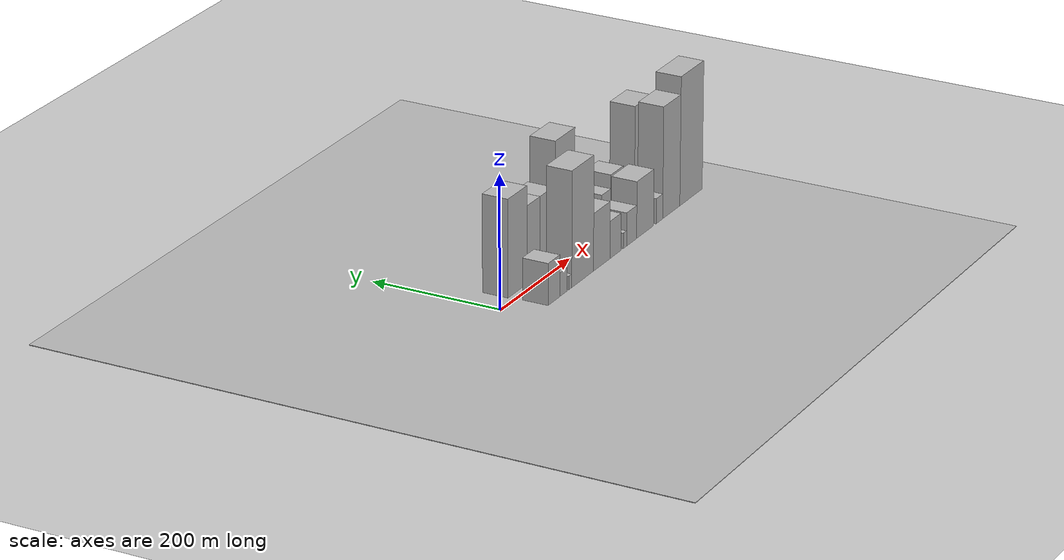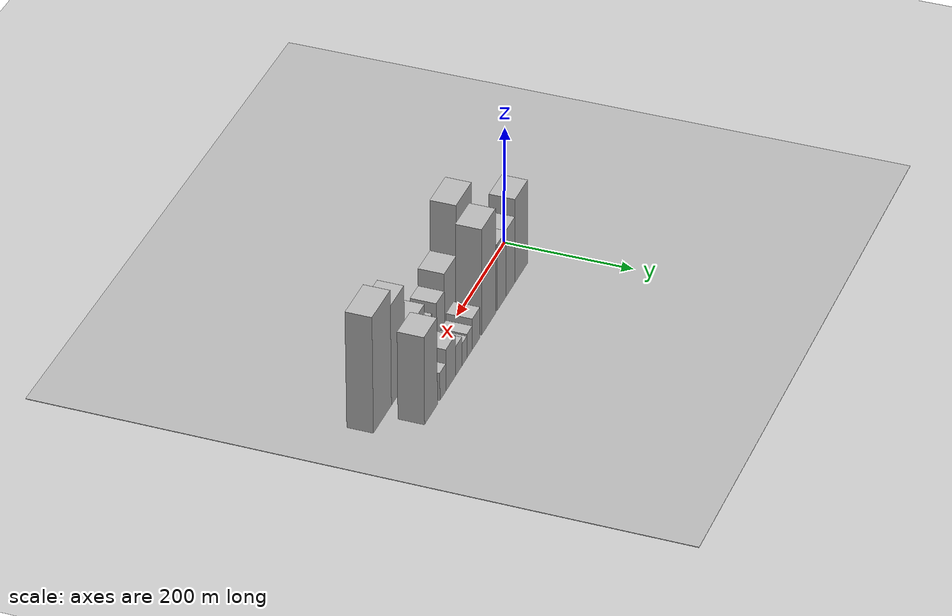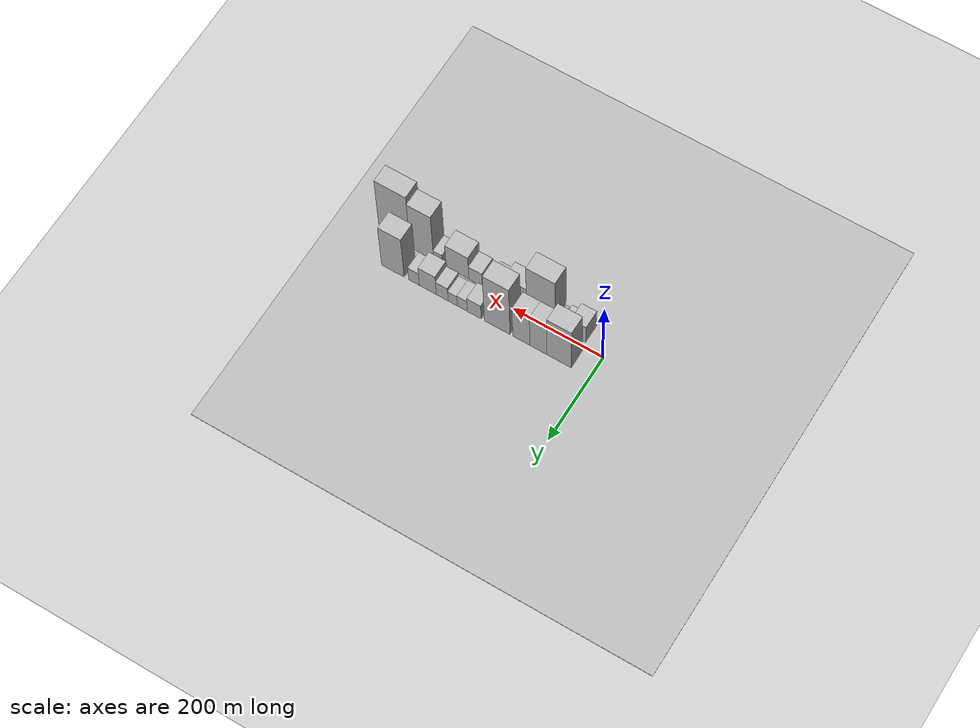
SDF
<?xml version="1.0" encoding="utf-8"?>

<sdf version="1.6">

   <world name="default">

      <gui fullscreen="0">

         <camera name="user_camera">

            <pose>-15 0 4.57585 0 0 0</pose>

            <view_controller>orbit</view_controller>

         </camera>

      </gui>

      <scene>

         <sky>

           <clouds>

             <speed>12</speed>

           </clouds>

         </sky>

         <ambient>0.4 0.4 0.4 1</ambient>

         <background>0.7 0.7 0.7 1</background>

         <shadows>1</shadows>

      </scene>

      <gravity>0 0 -9.8066</gravity>

      <magnetic_field>6e-06 2.3e-05 -4.2e-05</magnetic_field>

      <physics default="0" name="default_physics" type="ode">

         <ode>

            <solver>

               <type>quick</type>

               <iters>10</iters>

               <sor>1.0</sor>

               <use_dynamic_moi_rescaling>0</use_dynamic_moi_rescaling>

            </solver>

            <constraints>

               <cfm>0</cfm>

               <erp>0.2</erp>

               <contact_max_correcting_vel>100</contact_max_correcting_vel>

               <contact_surface_layer>0.001</contact_surface_layer>

            </constraints>

         </ode>

         <max_step_size>0.004</max_step_size>

         <real_time_factor>1</real_time_factor>

         <real_time_update_rate>250</real_time_update_rate>

      </physics>

      <light name="sun" type="directional">

         <cast_shadows>1</cast_shadows>

         <pose>0 0 10 0 0 0</pose>

         <diffuse>0.8 0.8 0.8 1</diffuse>

         <specular>0.2 0.2 0.2 1</specular>

         <attenuation>

            <range>1000</range>

            <constant>0.9</constant>

            <linear>0.01</linear>

            <quadratic>0.001</quadratic>

         </attenuation>

         <direction>-0.5 0.1 -0.9</direction>

      </light>

      <include>

         <name>ground_plane_1</name>

         <uri>model://HANNAS_ground_plane</uri>

         <pose>0 0 0  0 0 0</pose>

      </include>

      <include>

         <name>ground_plane_2</name>

         <uri>model://HANNAS_ground_plane</uri>

         <pose>100 0 0  0 0 0</pose>

      </include>

      <model name="building_1">

         <static>1</static>

         <pose frame="">66.9734 30.0000 0 0.000000 0.000000 1.570796</pose>

         <link name="link">

            <pose frame="">0 0 73.50 0 0 0</pose>

            <collision name="collision">

               <geometry>

                  <box>

                     <size>40.0000 53.9467 147.0000</size>

                  </box>

               </geometry>

               <max_contacts>10</max_contacts>

               <surface>

                  <contact>

                     <ode/>

                  </contact>

                  <bounce/>

                  <friction>

                     <torsional>

                        <ode/>

                     </torsional>

                     <ode/>

                  </friction>

               </surface>

            </collision>

            <visual name="visual">

               <cast_shadows>0</cast_shadows>

               <geometry>

                  <box>

                     <size>40.0000 53.9467 147.0000</size>

                  </box>

               </geometry>

               <material>

                  <script>

                     <uri>model://HANNAS_wall/materials/scripts</uri>

                     <uri>model://HANNAS_wall/materials/textures</uri>

                     <name>vrc/HANNAS_wall</name>

                  </script>

               </material>

            </visual>

            <self_collide>0</self_collide>

            <enable_wind>0</enable_wind>

            <kinematic>0</kinematic>

         </link>

      </model>

      <model name="building_2">

         <static>1</static>

         <pose frame="">112.8626 30.0000 0 0.000000 0.000000 1.570796</pose>

         <link name="link">

            <pose frame="">0 0 58.50 0 0 0</pose>

            <collision name="collision">

               <geometry>

                  <box>

                     <size>40.0000 37.8317 117.0000</size>

                  </box>

               </geometry>

               <max_contacts>10</max_contacts>

               <surface>

                  <contact>

                     <ode/>

                  </contact>

                  <bounce/>

                  <friction>

                     <torsional>

                        <ode/>

                     </torsional>

                     <ode/>

                  </friction>

               </surface>

            </collision>

            <visual name="visual">

               <cast_shadows>0</cast_shadows>

               <geometry>

                  <box>

                     <size>40.0000 37.8317 117.0000</size>

                  </box>

               </geometry>

               <material>

                  <script>

                     <uri>model://HANNAS_wall/materials/scripts</uri>

                     <uri>model://HANNAS_wall/materials/textures</uri>

                     <name>vrc/HANNAS_wall</name>

                  </script>

               </material>

            </visual>

            <self_collide>0</self_collide>

            <enable_wind>0</enable_wind>

            <kinematic>0</kinematic>

         </link>

      </model>

      <model name="building_3">

         <static>1</static>

         <pose frame="">150.6819 30.0000 0 0.000000 0.000000 1.570796</pose>

         <link name="link">

            <pose frame="">0 0 58.50 0 0 0</pose>

            <collision name="collision">

               <geometry>

                  <box>

                     <size>40.0000 37.8070 117.0000</size>

                  </box>

               </geometry>

               <max_contacts>10</max_contacts>

               <surface>

                  <contact>

                     <ode/>

                  </contact>

                  <bounce/>

                  <friction>

                     <torsional>

                        <ode/>

                     </torsional>

                     <ode/>

                  </friction>

               </surface>

            </collision>

            <visual name="visual">

               <cast_shadows>0</cast_shadows>

               <geometry>

                  <box>

                     <size>40.0000 37.8070 117.0000</size>

                  </box>

               </geometry>

               <material>

                  <script>

                     <uri>model://HANNAS_wall/materials/scripts</uri>

                     <uri>model://HANNAS_wall/materials/textures</uri>

                     <name>vrc/HANNAS_wall</name>

                  </script>

               </material>

            </visual>

            <self_collide>0</self_collide>

            <enable_wind>0</enable_wind>

            <kinematic>0</kinematic>

         </link>

      </model>

      <model name="building_4">

         <static>1</static>

         <pose frame="">204.2117 30.0000 0 0.000000 0.000000 1.570796</pose>

         <link name="link">

            <pose frame="">0 0 91.50 0 0 0</pose>

            <collision name="collision">

               <geometry>

                  <box>

                     <size>40.0000 57.2525 183.0000</size>

                  </box>

               </geometry>

               <max_contacts>10</max_contacts>

               <surface>

                  <contact>

                     <ode/>

                  </contact>

                  <bounce/>

                  <friction>

                     <torsional>

                        <ode/>

                     </torsional>

                     <ode/>

                  </friction>

               </surface>

            </collision>

            <visual name="visual">

               <cast_shadows>0</cast_shadows>

               <geometry>

                  <box>

                     <size>40.0000 57.2525 183.0000</size>

                  </box>

               </geometry>

               <material>

                  <script>

                     <uri>model://HANNAS_wall/materials/scripts</uri>

                     <uri>model://HANNAS_wall/materials/textures</uri>

                     <name>vrc/HANNAS_wall</name>

                  </script>

               </material>

            </visual>

            <self_collide>0</self_collide>

            <enable_wind>0</enable_wind>

            <kinematic>0</kinematic>

         </link>

      </model>

      <model name="building_5">

         <static>1</static>

         <pose frame="">255.5559 30.0000 0 0.000000 0.000000 1.570796</pose>

         <link name="link">

            <pose frame="">0 0 27.00 0 0 0</pose>

            <collision name="collision">

               <geometry>

                  <box>

                     <size>40.0000 31.4360 54.0000</size>

                  </box>

               </geometry>

               <max_contacts>10</max_contacts>

               <surface>

                  <contact>

                     <ode/>

                  </contact>

                  <bounce/>

                  <friction>

                     <torsional>

                        <ode/>

                     </torsional>

                     <ode/>

                  </friction>

               </surface>

            </collision>

            <visual name="visual">

               <cast_shadows>0</cast_shadows>

               <geometry>

                  <box>

                     <size>40.0000 31.4360 54.0000</size>

                  </box>

               </geometry>

               <material>

                  <script>

                     <uri>model://HANNAS_wall/materials/scripts</uri>

                     <uri>model://HANNAS_wall/materials/textures</uri>

                     <name>vrc/HANNAS_wall</name>

                  </script>

               </material>

            </visual>

            <self_collide>0</self_collide>

            <enable_wind>0</enable_wind>

            <kinematic>0</kinematic>

         </link>

      </model>

      <model name="building_6">

         <static>1</static>

         <pose frame="">282.4341 30.0000 0 0.000000 0.000000 1.570796</pose>

         <link name="link">

            <pose frame="">0 0 21.00 0 0 0</pose>

            <collision name="collision">

               <geometry>

                  <box>

                     <size>40.0000 22.3205 42.0000</size>

                  </box>

               </geometry>

               <max_contacts>10</max_contacts>

               <surface>

                  <contact>

                     <ode/>

                  </contact>

                  <bounce/>

                  <friction>

                     <torsional>

                        <ode/>

                     </torsional>

                     <ode/>

                  </friction>

               </surface>

            </collision>

            <visual name="visual">

               <cast_shadows>0</cast_shadows>

               <geometry>

                  <box>

                     <size>40.0000 22.3205 42.0000</size>

                  </box>

               </geometry>

               <material>

                  <script>

                     <uri>model://HANNAS_wall/materials/scripts</uri>

                     <uri>model://HANNAS_wall/materials/textures</uri>

                     <name>vrc/HANNAS_wall</name>

                  </script>

               </material>

            </visual>

            <self_collide>0</self_collide>

            <enable_wind>0</enable_wind>

            <kinematic>0</kinematic>

         </link>

      </model>

      <model name="building_7">

         <static>1</static>

         <pose frame="">303.8265 30.0000 0 0.000000 0.000000 1.570796</pose>

         <link name="link">

            <pose frame="">0 0 19.50 0 0 0</pose>

            <collision name="collision">

               <geometry>

                  <box>

                     <size>40.0000 20.4643 39.0000</size>

                  </box>

               </geometry>

               <max_contacts>10</max_contacts>

               <surface>

                  <contact>

                     <ode/>

                  </contact>

                  <bounce/>

                  <friction>

                     <torsional>

                        <ode/>

                     </torsional>

                     <ode/>

                  </friction>

               </surface>

            </collision>

            <visual name="visual">

               <cast_shadows>0</cast_shadows>

               <geometry>

                  <box>

                     <size>40.0000 20.4643 39.0000</size>

                  </box>

               </geometry>

               <material>

                  <script>

                     <uri>model://HANNAS_wall/materials/scripts</uri>

                     <uri>model://HANNAS_wall/materials/textures</uri>

                     <name>vrc/HANNAS_wall</name>

                  </script>

               </material>

            </visual>

            <self_collide>0</self_collide>

            <enable_wind>0</enable_wind>

            <kinematic>0</kinematic>

         </link>

      </model>

      <model name="building_8">

         <static>1</static>

         <pose frame="">327.4863 30.0000 0 0.000000 0.000000 1.570796</pose>

         <link name="link">

            <pose frame="">0 0 25.50 0 0 0</pose>

            <collision name="collision">

               <geometry>

                  <box>

                     <size>40.0000 26.8554 51.0000</size>

                  </box>

               </geometry>

               <max_contacts>10</max_contacts>

               <surface>

                  <contact>

                     <ode/>

                  </contact>

                  <bounce/>

                  <friction>

                     <torsional>

                        <ode/>

                     </torsional>

                     <ode/>

                  </friction>

               </surface>

            </collision>

            <visual name="visual">

               <cast_shadows>0</cast_shadows>

               <geometry>

                  <box>

                     <size>40.0000 26.8554 51.0000</size>

                  </box>

               </geometry>

               <material>

                  <script>

                     <uri>model://HANNAS_wall/materials/scripts</uri>

                     <uri>model://HANNAS_wall/materials/textures</uri>

                     <name>vrc/HANNAS_wall</name>

                  </script>

               </material>

            </visual>

            <self_collide>0</self_collide>

            <enable_wind>0</enable_wind>

            <kinematic>0</kinematic>

         </link>

      </model>

      <model name="building_9">

         <static>1</static>

         <pose frame="">359.9382 30.0000 0 0.000000 0.000000 1.570796</pose>

         <link name="link">

            <pose frame="">0 0 36.00 0 0 0</pose>

            <collision name="collision">

               <geometry>

                  <box>

                     <size>40.0000 38.0484 72.0000</size>

                  </box>

               </geometry>

               <max_contacts>10</max_contacts>

               <surface>

                  <contact>

                     <ode/>

                  </contact>

                  <bounce/>

                  <friction>

                     <torsional>

                        <ode/>

                     </torsional>

                     <ode/>

                  </friction>

               </surface>

            </collision>

            <visual name="visual">

               <cast_shadows>0</cast_shadows>

               <geometry>

                  <box>

                     <size>40.0000 38.0484 72.0000</size>

                  </box>

               </geometry>

               <material>

                  <script>

                     <uri>model://HANNAS_wall/materials/scripts</uri>

                     <uri>model://HANNAS_wall/materials/textures</uri>

                     <name>vrc/HANNAS_wall</name>

                  </script>

               </material>

            </visual>

            <self_collide>0</self_collide>

            <enable_wind>0</enable_wind>

            <kinematic>0</kinematic>

         </link>

      </model>

      <model name="building_10">

         <static>1</static>

         <pose frame="">391.1790 30.0000 0 0.000000 0.000000 1.570796</pose>

         <link name="link">

            <pose frame="">0 0 24.00 0 0 0</pose>

            <collision name="collision">

               <geometry>

                  <box>

                     <size>40.0000 24.4331 48.0000</size>

                  </box>

               </geometry>

               <max_contacts>10</max_contacts>

               <surface>

                  <contact>

                     <ode/>

                  </contact>

                  <bounce/>

                  <friction>

                     <torsional>

                        <ode/>

                     </torsional>

                     <ode/>

                  </friction>

               </surface>

            </collision>

            <visual name="visual">

               <cast_shadows>0</cast_shadows>

               <geometry>

                  <box>

                     <size>40.0000 24.4331 48.0000</size>

                  </box>

               </geometry>

               <material>

                  <script>

                     <uri>model://HANNAS_wall/materials/scripts</uri>

                     <uri>model://HANNAS_wall/materials/textures</uri>

                     <name>vrc/HANNAS_wall</name>

                  </script>

               </material>

            </visual>

            <self_collide>0</self_collide>

            <enable_wind>0</enable_wind>

            <kinematic>0</kinematic>

         </link>

      </model>

      <model name="building_11">

         <static>1</static>

         <pose frame="">439.0586 30.0000 0 0.000000 0.000000 1.570796</pose>

         <link name="link">

            <pose frame="">0 0 75.00 0 0 0</pose>

            <collision name="collision">

               <geometry>

                  <box>

                     <size>40.0000 51.3263 150.0000</size>

                  </box>

               </geometry>

               <max_contacts>10</max_contacts>

               <surface>

                  <contact>

                     <ode/>

                  </contact>

                  <bounce/>

                  <friction>

                     <torsional>

                        <ode/>

                     </torsional>

                     <ode/>

                  </friction>

               </surface>

            </collision>

            <visual name="visual">

               <cast_shadows>0</cast_shadows>

               <geometry>

                  <box>

                     <size>40.0000 51.3263 150.0000</size>

                  </box>

               </geometry>

               <material>

                  <script>

                     <uri>model://HANNAS_wall/materials/scripts</uri>

                     <uri>model://HANNAS_wall/materials/textures</uri>

                     <name>vrc/HANNAS_wall</name>

                  </script>

               </material>

            </visual>

            <self_collide>0</self_collide>

            <enable_wind>0</enable_wind>

            <kinematic>0</kinematic>

         </link>

      </model>

      <model name="building_12">

         <static>1</static>

         <pose frame="">60.8391 -30.0000 0 0.000000 0.000000 1.570796</pose>

         <link name="link">

            <pose frame="">0 0 31.50 0 0 0</pose>

            <collision name="collision">

               <geometry>

                  <box>

                     <size>40.0000 33.6782 63.0000</size>

                  </box>

               </geometry>

               <max_contacts>10</max_contacts>

               <surface>

                  <contact>

                     <ode/>

                  </contact>

                  <bounce/>

                  <friction>

                     <torsional>

                        <ode/>

                     </torsional>

                     <ode/>

                  </friction>

               </surface>

            </collision>

            <visual name="visual">

               <cast_shadows>0</cast_shadows>

               <geometry>

                  <box>

                     <size>40.0000 33.6782 63.0000</size>

                  </box>

               </geometry>

               <material>

                  <script>

                     <uri>model://HANNAS_wall/materials/scripts</uri>

                     <uri>model://HANNAS_wall/materials/textures</uri>

                     <name>vrc/HANNAS_wall</name>

                  </script>

               </material>

            </visual>

            <self_collide>0</self_collide>

            <enable_wind>0</enable_wind>

            <kinematic>0</kinematic>

         </link>

      </model>

      <model name="building_13">

         <static>1</static>

         <pose frame="">87.7919 -30.0000 0 0.000000 0.000000 1.570796</pose>

         <link name="link">

            <pose frame="">0 0 18.00 0 0 0</pose>

            <collision name="collision">

               <geometry>

                  <box>

                     <size>40.0000 20.2273 36.0000</size>

                  </box>

               </geometry>

               <max_contacts>10</max_contacts>

               <surface>

                  <contact>

                     <ode/>

                  </contact>

                  <bounce/>

                  <friction>

                     <torsional>

                        <ode/>

                     </torsional>

                     <ode/>

                  </friction>

               </surface>

            </collision>

            <visual name="visual">

               <cast_shadows>0</cast_shadows>

               <geometry>

                  <box>

                     <size>40.0000 20.2273 36.0000</size>

                  </box>

               </geometry>

               <material>

                  <script>

                     <uri>model://HANNAS_wall/materials/scripts</uri>

                     <uri>model://HANNAS_wall/materials/textures</uri>

                     <name>vrc/HANNAS_wall</name>

                  </script>

               </material>

            </visual>

            <self_collide>0</self_collide>

            <enable_wind>0</enable_wind>

            <kinematic>0</kinematic>

         </link>

      </model>

      <model name="building_14">

         <static>1</static>

         <pose frame="">107.4471 -30.0000 0 0.000000 0.000000 1.570796</pose>

         <link name="link">

            <pose frame="">0 0 10.50 0 0 0</pose>

            <collision name="collision">

               <geometry>

                  <box>

                     <size>40.0000 9.0832 21.0000</size>

                  </box>

               </geometry>

               <max_contacts>10</max_contacts>

               <surface>

                  <contact>

                     <ode/>

                  </contact>

                  <bounce/>

                  <friction>

                     <torsional>

                        <ode/>

                     </torsional>

                     <ode/>

                  </friction>

               </surface>

            </collision>

            <visual name="visual">

               <cast_shadows>0</cast_shadows>

               <geometry>

                  <box>

                     <size>40.0000 9.0832 21.0000</size>

                  </box>

               </geometry>

               <material>

                  <script>

                     <uri>model://HANNAS_wall/materials/scripts</uri>

                     <uri>model://HANNAS_wall/materials/textures</uri>

                     <name>vrc/HANNAS_wall</name>

                  </script>

               </material>

            </visual>

            <self_collide>0</self_collide>

            <enable_wind>0</enable_wind>

            <kinematic>0</kinematic>

         </link>

      </model>

      <model name="building_15">

         <static>1</static>

         <pose frame="">143.8506 -30.0000 0 0.000000 0.000000 1.570796</pose>

         <link name="link">

            <pose frame="">0 0 87.00 0 0 0</pose>

            <collision name="collision">

               <geometry>

                  <box>

                     <size>40.0000 63.7238 174.0000</size>

                  </box>

               </geometry>

               <max_contacts>10</max_contacts>

               <surface>

                  <contact>

                     <ode/>

                  </contact>

                  <bounce/>

                  <friction>

                     <torsional>

                        <ode/>

                     </torsional>

                     <ode/>

                  </friction>

               </surface>

            </collision>

            <visual name="visual">

               <cast_shadows>0</cast_shadows>

               <geometry>

                  <box>

                     <size>40.0000 63.7238 174.0000</size>

                  </box>

               </geometry>

               <material>

                  <script>

                     <uri>model://HANNAS_wall/materials/scripts</uri>

                     <uri>model://HANNAS_wall/materials/textures</uri>

                     <name>vrc/HANNAS_wall</name>

                  </script>

               </material>

            </visual>

            <self_collide>0</self_collide>

            <enable_wind>0</enable_wind>

            <kinematic>0</kinematic>

         </link>

      </model>

      <model name="building_16">

         <static>1</static>

         <pose frame="">200.1284 -30.0000 0 0.000000 0.000000 1.570796</pose>

         <link name="link">

            <pose frame="">0 0 43.50 0 0 0</pose>

            <collision name="collision">

               <geometry>

                  <box>

                     <size>40.0000 48.8318 87.0000</size>

                  </box>

               </geometry>

               <max_contacts>10</max_contacts>

               <surface>

                  <contact>

                     <ode/>

                  </contact>

                  <bounce/>

                  <friction>

                     <torsional>

                        <ode/>

                     </torsional>

                     <ode/>

                  </friction>

               </surface>

            </collision>

            <visual name="visual">

               <cast_shadows>0</cast_shadows>

               <geometry>

                  <box>

                     <size>40.0000 48.8318 87.0000</size>

                  </box>

               </geometry>

               <material>

                  <script>

                     <uri>model://HANNAS_wall/materials/scripts</uri>

                     <uri>model://HANNAS_wall/materials/textures</uri>

                     <name>vrc/HANNAS_wall</name>

                  </script>

               </material>

            </visual>

            <self_collide>0</self_collide>

            <enable_wind>0</enable_wind>

            <kinematic>0</kinematic>

         </link>

      </model>

      <model name="building_17">

         <static>1</static>

         <pose frame="">241.0071 -30.0000 0 0.000000 0.000000 1.570796</pose>

         <link name="link">

            <pose frame="">0 0 28.50 0 0 0</pose>

            <collision name="collision">

               <geometry>

                  <box>

                     <size>40.0000 32.9256 57.0000</size>

                  </box>

               </geometry>

               <max_contacts>10</max_contacts>

               <surface>

                  <contact>

                     <ode/>

                  </contact>

                  <bounce/>

                  <friction>

                     <torsional>

                        <ode/>

                     </torsional>

                     <ode/>

                  </friction>

               </surface>

            </collision>

            <visual name="visual">

               <cast_shadows>0</cast_shadows>

               <geometry>

                  <box>

                     <size>40.0000 32.9256 57.0000</size>

                  </box>

               </geometry>

               <material>

                  <script>

                     <uri>model://HANNAS_wall/materials/scripts</uri>

                     <uri>model://HANNAS_wall/materials/textures</uri>

                     <name>vrc/HANNAS_wall</name>

                  </script>

               </material>

            </visual>

            <self_collide>0</self_collide>

            <enable_wind>0</enable_wind>

            <kinematic>0</kinematic>

         </link>

      </model>

      <model name="building_18">

         <static>1</static>

         <pose frame="">269.4883 -30.0000 0 0.000000 0.000000 1.570796</pose>

         <link name="link">

            <pose frame="">0 0 12.00 0 0 0</pose>

            <collision name="collision">

               <geometry>

                  <box>

                     <size>40.0000 10.0369 24.0000</size>

                  </box>

               </geometry>

               <max_contacts>10</max_contacts>

               <surface>

                  <contact>

                     <ode/>

                  </contact>

                  <bounce/>

                  <friction>

                     <torsional>

                        <ode/>

                     </torsional>

                     <ode/>

                  </friction>

               </surface>

            </collision>

            <visual name="visual">

               <cast_shadows>0</cast_shadows>

               <geometry>

                  <box>

                     <size>40.0000 10.0369 24.0000</size>

                  </box>

               </geometry>

               <material>

                  <script>

                     <uri>model://HANNAS_wall/materials/scripts</uri>

                     <uri>model://HANNAS_wall/materials/textures</uri>

                     <name>vrc/HANNAS_wall</name>

                  </script>

               </material>

            </visual>

            <self_collide>0</self_collide>

            <enable_wind>0</enable_wind>

            <kinematic>0</kinematic>

         </link>

      </model>

      <model name="building_19">

         <static>1</static>

         <pose frame="">289.6140 -30.0000 0 0.000000 0.000000 1.570796</pose>

         <link name="link">

            <pose frame="">0 0 25.50 0 0 0</pose>

            <collision name="collision">

               <geometry>

                  <box>

                     <size>40.0000 30.2144 51.0000</size>

                  </box>

               </geometry>

               <max_contacts>10</max_contacts>

               <surface>

                  <contact>

                     <ode/>

                  </contact>

                  <bounce/>

                  <friction>

                     <torsional>

                        <ode/>

                     </torsional>

                     <ode/>

                  </friction>

               </surface>

            </collision>

            <visual name="visual">

               <cast_shadows>0</cast_shadows>

               <geometry>

                  <box>

                     <size>40.0000 30.2144 51.0000</size>

                  </box>

               </geometry>

               <material>

                  <script>

                     <uri>model://HANNAS_wall/materials/scripts</uri>

                     <uri>model://HANNAS_wall/materials/textures</uri>

                     <name>vrc/HANNAS_wall</name>

                  </script>

               </material>

            </visual>

            <self_collide>0</self_collide>

            <enable_wind>0</enable_wind>

            <kinematic>0</kinematic>

         </link>

      </model>

      <model name="building_20">

         <static>1</static>

         <pose frame="">330.5488 -30.0000 0 0.000000 0.000000 1.570796</pose>

         <link name="link">

            <pose frame="">0 0 43.50 0 0 0</pose>

            <collision name="collision">

               <geometry>

                  <box>

                     <size>40.0000 51.6553 87.0000</size>

                  </box>

               </geometry>

               <max_contacts>10</max_contacts>

               <surface>

                  <contact>

                     <ode/>

                  </contact>

                  <bounce/>

                  <friction>

                     <torsional>

                        <ode/>

                     </torsional>

                     <ode/>

                  </friction>

               </surface>

            </collision>

            <visual name="visual">

               <cast_shadows>0</cast_shadows>

               <geometry>

                  <box>

                     <size>40.0000 51.6553 87.0000</size>

                  </box>

               </geometry>

               <material>

                  <script>

                     <uri>model://HANNAS_wall/materials/scripts</uri>

                     <uri>model://HANNAS_wall/materials/textures</uri>

                     <name>vrc/HANNAS_wall</name>

                  </script>

               </material>

            </visual>

            <self_collide>0</self_collide>

            <enable_wind>0</enable_wind>

            <kinematic>0</kinematic>

         </link>

      </model>

      <model name="building_21">

         <static>1</static>

         <pose frame="">374.4280 -30.0000 0 0.000000 0.000000 1.570796</pose>

         <link name="link">

            <pose frame="">0 0 19.50 0 0 0</pose>

            <collision name="collision">

               <geometry>

                  <box>

                     <size>40.0000 20.1032 39.0000</size>

                  </box>

               </geometry>

               <max_contacts>10</max_contacts>

               <surface>

                  <contact>

                     <ode/>

                  </contact>

                  <bounce/>

                  <friction>

                     <torsional>

                        <ode/>

                     </torsional>

                     <ode/>

                  </friction>

               </surface>

            </collision>

            <visual name="visual">

               <cast_shadows>0</cast_shadows>

               <geometry>

                  <box>

                     <size>40.0000 20.1032 39.0000</size>

                  </box>

               </geometry>

               <material>

                  <script>

                     <uri>model://HANNAS_wall/materials/scripts</uri>

                     <uri>model://HANNAS_wall/materials/textures</uri>

                     <name>vrc/HANNAS_wall</name>

                  </script>

               </material>

            </visual>

            <self_collide>0</self_collide>

            <enable_wind>0</enable_wind>

            <kinematic>0</kinematic>

         </link>

      </model>

      <model name="building_22">

         <static>1</static>

         <pose frame="">411.0957 -30.0000 0 0.000000 0.000000 1.570796</pose>

         <link name="link">

            <pose frame="">0 0 85.50 0 0 0</pose>

            <collision name="collision">

               <geometry>

                  <box>

                     <size>40.0000 53.2321 171.0000</size>

                  </box>

               </geometry>

               <max_contacts>10</max_contacts>

               <surface>

                  <contact>

                     <ode/>

                  </contact>

                  <bounce/>

                  <friction>

                     <torsional>

                        <ode/>

                     </torsional>

                     <ode/>

                  </friction>

               </surface>

            </collision>

            <visual name="visual">

               <cast_shadows>0</cast_shadows>

               <geometry>

                  <box>

                     <size>40.0000 53.2321 171.0000</size>

                  </box>

               </geometry>

               <material>

                  <script>

                     <uri>model://HANNAS_wall/materials/scripts</uri>

                     <uri>model://HANNAS_wall/materials/textures</uri>

                     <name>vrc/HANNAS_wall</name>

                  </script>

               </material>

            </visual>

            <self_collide>0</self_collide>

            <enable_wind>0</enable_wind>

            <kinematic>0</kinematic>

         </link>

      </model>

      <model name="building_23">

         <static>1</static>

         <pose frame="">472.9322 -30.0000 0 0.000000 0.000000 1.570796</pose>

         <link name="link">

            <pose frame="">0 0 99.00 0 0 0</pose>

            <collision name="collision">

               <geometry>

                  <box>

                     <size>40.0000 70.4409 198.0000</size>

                  </box>

               </geometry>

               <max_contacts>10</max_contacts>

               <surface>

                  <contact>

                     <ode/>

                  </contact>

                  <bounce/>

                  <friction>

                     <torsional>

                        <ode/>

                     </torsional>

                     <ode/>

                  </friction>

               </surface>

            </collision>

            <visual name="visual">

               <cast_shadows>0</cast_shadows>

               <geometry>

                  <box>

                     <size>40.0000 70.4409 198.0000</size>

                  </box>

               </geometry>

               <material>

                  <script>

                     <uri>model://HANNAS_wall/materials/scripts</uri>

                     <uri>model://HANNAS_wall/materials/textures</uri>

                     <name>vrc/HANNAS_wall</name>

                  </script>

               </material>

            </visual>

            <self_collide>0</self_collide>

            <enable_wind>0</enable_wind>

            <kinematic>0</kinematic>

         </link>

      </model>

   </world>

</sdf>

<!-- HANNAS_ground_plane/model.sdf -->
<sdf version="1.4">
<model name="HANNAS_ground_plane">
  <static>true</static>
    <link name="link">
      <collision name="collision">
        <geometry>
          <plane>
            <normal>0 0 1</normal>
            <size>1000 1000</size>
          </plane>
        </geometry>
        <surface>
          <friction>
            <ode>
              <mu>100</mu>
              <mu2>50</mu2>
            </ode>
          </friction>
        </surface>
      </collision>
      <visual name="visual">
        <cast_shadows>false</cast_shadows>
        <geometry>
          <plane>
            <normal>0 0 1</normal>
            <size>1000 1000</size>
          </plane>
        </geometry>
        <material>
          <script>
            <uri>model://HANNAS_ground_plane/materials/scripts/HANNAS_ground_plane.material</uri>
	    <uri>model://HANNAS_ground_plane/materials/textures</uri>
            <name>HANNASGroundPlane/Image</name>
          </script>
        </material>
      </visual>
    </link>
  </model>
</sdf>
